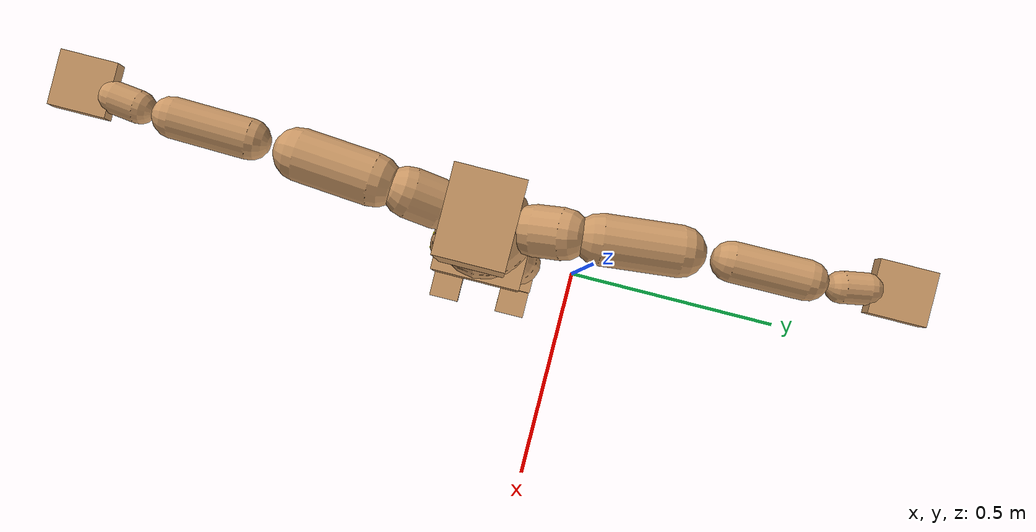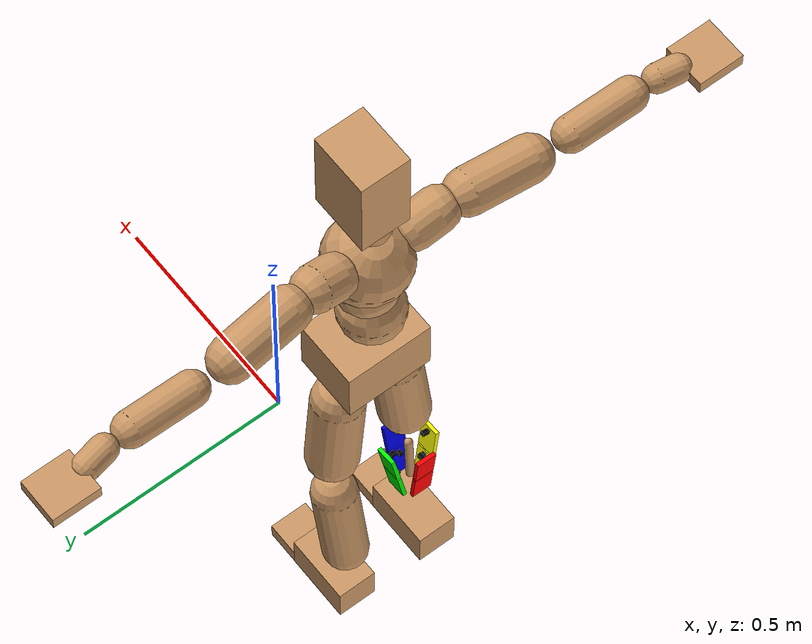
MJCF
<mujoco model="smpl_humanoid8">
  <compiler coordinate="local"/>
  <default>
    <joint damping="50.0" armature="0.01" stiffness="1000.0" limited="true"/>
    <geom conaffinity="1" condim="3" contype="7" margin="0.001" rgba="0.8 0.6 .4 1"/>

    <default class="posterior">
      <geom solref="0.0032 1" solimp="0.9 0.99 0.001 0.5 2" rgba="0 0 0 1"/>
    </default>

    <default class="medial">
      <geom solref="0.0023 1" solimp="0.9 0.99 0.001 0.5 2" rgba="0 0 0 1"/>
    </default>

    <default class="lateral">
      <geom solref="0.0020 1" solimp="0.9 0.99 0.001 0.5 2" rgba="0 0 0 1"/>
    </default>

    <default class="anterior">
      <geom solref="0.0017 1" solimp="0.9 0.99 0.001 0.5 2" rgba="0 0 0 1"/>
    </default>
  </default>
  <worldbody>
    <light cutoff="100" diffuse="1 1 1" dir="-0 0 -1.3" directional="true" exponent="1" pos="0 0 1.3" specular=".1 .1 .1"/>
    <body name="Pelvis" pos="-0.0018 -0.2233 0.0282">
      <freejoint name="Pelvis"/>
      <geom type="box" pos="-0.0055 -0.0000 -0.0121" size="0.083 0.1069 0.0722" quat="1.0000 0.0000 0.0000 0.0000" density="1000"/>
      <body name="L_Hip" pos="-0.0068 0.0695 -0.0914">
        <joint name="L_Hip_x" type="hinge" pos="0 0 0" axis="1 0 0" stiffness="800" damping="80" armature="0.02" range="-180.0000 180.0000"/>
        <joint name="L_Hip_y" type="hinge" pos="0 0 0" axis="0 1 0" stiffness="800" damping="80" armature="0.02" range="-180.0000 180.0000"/>
        <joint name="L_Hip_z" type="hinge" pos="0 0 0" axis="0 0 1" stiffness="800" damping="80" armature="0.02" range="-180.0000 180.0000"/>
        <geom type="capsule" contype="1" conaffinity="1" density="2040.816327" fromto="-0.0009 0.0069 -0.0750 -0.0036 0.0274 -0.3002" size="0.0615"/>
        <body name="L_Knee" pos="-0.0045 0.0343 -0.3752">
          <joint name="L_Knee_x" type="hinge" pos="0 0 0" axis="1 0 0" stiffness="800" damping="80" armature="0.02" range="-180.0000 180.0000"/>
          <joint name="L_Knee_y" type="hinge" pos="0 0 0" axis="0 1 0" stiffness="800" damping="80" armature="0.02" range="-180.0000 180.0000"/>
          <joint name="L_Knee_z" type="hinge" pos="0 0 0" axis="0 0 1" stiffness="800" damping="80" armature="0.02" range="-180.0000 180.0000"/>
          <geom type="capsule" contype="1" conaffinity="1" density="1234.567901" fromto="-0.0087 -0.0027 -0.0796 -0.0350 -0.0109 -0.3184" size="0.0541"/>
          <body name="L_Ankle" pos="-0.0437 -0.0136 -0.398">
            <joint name="L_Ankle_x" type="hinge" pos="0 0 0" axis="1 0 0" stiffness="800" damping="80" armature="0.02" range="-180.0000 180.0000"/>
            <joint name="L_Ankle_y" type="hinge" pos="0 0 0" axis="0 1 0" stiffness="800" damping="80" armature="0.02" range="-180.0000 180.0000"/>
            <joint name="L_Ankle_z" type="hinge" pos="0 0 0" axis="0 0 1" stiffness="800" damping="80" armature="0.02" range="-180.0000 180.0000"/>
            <geom type="box" pos="0.0242 0.0233 -0.0239" size="0.085 0.0483 0.0464" quat="1.0000 0.0000 0.0000 0.0000" density="1000"/>
            <body name="L_Toe" pos="0.1193 0.0264 -0.0558">
              <joint name="L_Toe_x" type="hinge" pos="0 0 0" axis="1 0 0" stiffness="500" damping="50" armature="0.02" range="-180.0000 180.0000"/>
              <joint name="L_Toe_y" type="hinge" pos="0 0 0" axis="0 1 0" stiffness="500" damping="50" armature="0.02" range="-180.0000 180.0000"/>
              <joint name="L_Toe_z" type="hinge" pos="0 0 0" axis="0 0 1" stiffness="500" damping="50" armature="0.02" range="-180.0000 180.0000"/>
              <geom type="box" pos="0.0248 -0.0030 0.0055" size="0.0496 0.0478 0.02" quat="1.0000 0.0000 0.0000 0.0000" density="1000"/>
            </body>
          </body>
        </body>
      </body>
      <body name="R_Hip" pos="-0.0043 -0.0677 -0.0905">
        <joint name="R_Hip_x" type="hinge" pos="0 0 0" axis="1 0 0" stiffness="800" damping="80" armature="0.02" range="-180.0000 180.0000"/>
        <joint name="R_Hip_y" type="hinge" pos="0 0 0" axis="0 1 0" stiffness="800" damping="80" armature="0.02" range="-180.0000 180.0000"/>
        <joint name="R_Hip_z" type="hinge" pos="0 0 0" axis="0 0 1" stiffness="800" damping="80" armature="0.02" range="-180.0000 180.0000"/>
        <geom type="capsule" contype="1" conaffinity="1" density="2040.816327" fromto="-0.0018 -0.0077 -0.0765 -0.0071 -0.0306 -0.3061" size="0.0606"/>
        <body name="R_Knee" pos="-0.0089 -0.0383 -0.3826">
          <joint name="R_Knee_x" type="hinge" pos="0 0 0" axis="1 0 0" stiffness="800" damping="80" armature="0.02" range="-180.0000 180.0000"/>
          <joint name="R_Knee_y" type="hinge" pos="0 0 0" axis="0 1 0" stiffness="800" damping="80" armature="0.02" range="-180.0000 180.0000"/>
          <joint name="R_Knee_z" type="hinge" pos="0 0 0" axis="0 0 1" stiffness="800" damping="80" armature="0.02" range="-180.0000 180.0000"/>
          <geom type="capsule" contype="1" conaffinity="1" density="14088" fromto="-0.0085 0.0032 -0.0797 -0.02115 0.0079 -0.1992" size="0.01"/>

          <body name="skin_box_posterior_top" pos="-0.05470451931018451 0.0032138937524858443 -0.0800532560472466" quat="0.5259542185366413 -0.47262264017238004 0.4929276001932958 -0.5069737478091723">
            <geom class="posterior" type="box" size="0.005 0.005 0.008767" density="140057"/>
          </body>

          <body name="skin_box_medial_top" pos="-0.00904822281488171 0.04927921900013707 -0.08307455413931036" quat="0.03309040381457722 0.0409744846434732 -0.6574625257782494 0.7516442935197971">
            <geom class="medial" type="box" size="0.005 0.005 0.008767" density="140057"/>
          </body>

          <body name="skin_box_anterior_top" pos="0.0366080736804211 0.0035934813036317837 -0.08970447144340371" quat="0.5727511163956187 -0.41467596827833214 -0.4368648205143749 0.5560118061668682">
            <geom class="anterior" type="box" size="0.005 0.005 0.008767" density="140057"/>
          </body>

          <body name="skin_box_lateral_top" pos="-0.0090482228148817 -0.04247184394401944 -0.08668317335133995" quat="0.7769019928564379 -0.6274148629728858 0.03964237168313232 0.03467514360094845">
            <geom class="lateral" type="box" size="0.005 0.005 0.008767" density="140057"/>
          </body>

          <body name="skin_box_posterior_bottom" pos="-0.05279881966829475 0.006360051605183232 -0.16004599294029714" quat="0.5259542185366413 -0.47262264017238004 0.4929276001932958 -0.5069737478091723">
            <geom class="posterior" type="box" size="0.005 0.005 0.005277" density="140057"/>
          </body>

          <body name="skin_box_medial_bottom" pos="-0.017401292414470984 0.04207470064768166 -0.1623884186244907" quat="0.03309040381457722 0.0409744846434732 -0.6574625257782494 0.7516442935197971">
            <geom class="medial" type="box" size="0.005 0.005 0.005277" density="140057"/>
          </body>

          <body name="skin_box_anterior_bottom" pos="0.017996234839352795 0.0066543475012220835 -0.16752862263745497" quat="0.5727511163956187 -0.41467596827833214 -0.4368648205143749 0.5560118061668682">
            <geom class="anterior" type="box" size="0.005 0.005 0.005277" density="140057"/>
          </body>

          <body name="skin_box_lateral_bottom" pos="-0.017401292414470974 -0.029060301541276347 -0.16518619695326142" quat="0.7769019928564379 -0.6274148629728858 0.03964237168313232 0.03467514360094845">
            <geom class="lateral" type="box" size="0.005 0.005 0.005277" density="140057"/>
          </body>

          <body name="prosthetic_assembly1" pos="-0.014825  0.00555  -0.13945" quat="0.53483409 -0.46255    -0.48321172  0.51624261">
          <inertial pos="0 0 0" mass="0.1" diaginertia="0.001 0.001 0.001"/>
            <joint name="suspension_slide" type="slide" axis="0 1 0"
               range="-0.05 0.05" stiffness="10000000" damping="1" springref="-0.025"/>

            <body name="prosthetic_assembly2" pos="0.0  0.0  0.0" quat="1.0 0.0 0.0 0.0">
            <inertial pos="0 0 0" mass="0.1" diaginertia="0.001 0.001 0.001"/>

            <joint name="suspension_x" type="hinge" axis="1 0 0" pos="0 0 0"
                  range="-10 10" stiffness="10" damping="1"/>

            <joint name="suspension_y" type="hinge" axis="0 1 0" pos="0 0 0"
                  range="-10 10" stiffness="10" damping="1"/>

            <joint name="suspension_z" type="hinge" axis="0 0 1" pos="0 0 0"
                  range="-20 20" stiffness="10" damping="1"/>

            <body name="socket_box_posterior_top" pos="-0.0 -0.02792 0.05518" quat="0.0 0.0 0.99627 -0.08629">

                <geom type="box" pos="0.0 0.0 0.0" size="0.025000 0.037500 0.005000"
                      density="5912" rgba="1 0 0 1"/>
            </body>
            <body name="socket_box_medial_top" pos="0.05518 -0.02792 0.0" quat="0.70447 0.06101 -0.70447 0.06101">

                <geom type="box" pos="0.0 0.0 0.0" size="0.025000 0.037500 0.005000"
                      density="5912" rgba="0 1 0 1"/>
            </body>
            <body name="socket_box_anterior_top" pos="0.0 -0.02792 -0.05518" quat="0.99627 0.08629 -0.0 -0.0">

                <geom type="box" pos="0.0 0.0 0.0" size="0.025000 0.037500 0.005000"
                      density="5912" rgba="0 0 1 1"/>
            </body>
            <body name="socket_box_lateral_top" pos="-0.05518 -0.02792 -0.0" quat="0.70447 0.06101 0.70447 -0.06101">

                <geom type="box" pos="0.0 0.0 0.0" size="0.025000 0.037500 0.005000"
                      density="5912" rgba="1 1 0 1"/>
            </body>
            <body name="socket_box_posterior_bottom" pos="-0.0 0.05089 0.04142" quat="0.0 0.0 0.99627 -0.08629">

                <geom type="box" pos="0.0 0.0 0.0" size="0.025000 0.037500 0.005000"
                      density="5912" rgba="1 0 0 1"/>
            </body>
            <body name="socket_box_medial_bottom" pos="0.04142 0.05089 0.0" quat="0.70447 0.06101 -0.70447 0.06101">

                <geom type="box" pos="0.0 0.0 0.0" size="0.025000 0.037500 0.005000"
                      density="5912" rgba="0 1 0 1"/>
            </body>
            <body name="socket_box_anterior_bottom" pos="-0.0 0.05089 -0.04142" quat="0.99627 0.08629 -0.0 -0.0">

                <geom type="box" pos="0.0 0.0 0.0" size="0.025000 0.037500 0.005000"
                      density="5912" rgba="0 0 1 1"/>
            </body>
            <body name="socket_box_lateral_bottom" pos="-0.04142 0.05089 -0.0" quat="0.70447 0.06101 0.70447 -0.06101">

                <geom type="box" pos="0.0 0.0 0.0" size="0.025000 0.037500 0.005000"
                      density="5912" rgba="1 1 0 1"/>
            </body>

            <body name="R_Ankle" pos="6.53051581e-05 2.60605127e-01 6.25176230e-05" quat="0.53483409  0.46255     0.48321172 -0.51624261">
              <joint name="R_Ankle_x" type="hinge" pos="0 0 0" axis="1 0 0" stiffness="800" damping="80" armature="0.02" range="-180.0000 180.0000"/>
              <joint name="R_Ankle_y" type="hinge" pos="0 0 0" axis="0 1 0" stiffness="800" damping="80" armature="0.02" range="-180.0000 180.0000"/>
              <joint name="R_Ankle_z" type="hinge" pos="0 0 0" axis="0 0 1" stiffness="800" damping="80" armature="0.02" range="-180.0000 180.0000"/>
              <geom type="box" pos="0.0256 -0.0212 -0.0174" size="0.0865 0.0483 0.0478" quat="1.0000 0.0000 0.0000 0.0000" density="1000"/>
              <body name="R_Toe" pos="0.1233 -0.0254 -0.0481">
                <joint name="R_Toe_x" type="hinge" pos="0 0 0" axis="1 0 0" stiffness="500" damping="50" armature="0.02" range="-180.0000 180.0000"/>
                <joint name="R_Toe_y" type="hinge" pos="0 0 0" axis="0 1 0" stiffness="500" damping="50" armature="0.02" range="-180.0000 180.0000"/>
                <joint name="R_Toe_z" type="hinge" pos="0 0 0" axis="0 0 1" stiffness="500" damping="50" armature="0.02" range="-180.0000 180.0000"/>
                <geom type="box" pos="0.0227 0.0042 0.0045" size="0.0493 0.0479 0.0216" quat="1.0000 0.0000 0.0000 0.0000" density="1000"/>
		      </body>
              </body>
            </body>

          </body>

        </body>
      </body>
      <body name="Torso" pos="-0.0267 -0.0025 0.109">
        <joint name="Torso_x" type="hinge" pos="0 0 0" axis="1 0 0" stiffness="1000" damping="100" armature="0.02" range="-180.0000 180.0000"/>
        <joint name="Torso_y" type="hinge" pos="0 0 0" axis="0 1 0" stiffness="1000" damping="100" armature="0.02" range="-180.0000 180.0000"/>
        <joint name="Torso_z" type="hinge" pos="0 0 0" axis="0 0 1" stiffness="1000" damping="100" armature="0.02" range="-180.0000 180.0000"/>
        <geom type="capsule" contype="1" conaffinity="1" density="2040.816327" fromto="0.0005 0.0025 0.0608 0.0006 0.0030 0.0743" size="0.0769"/>
        <body name="Spine" pos="0.0011 0.0055 0.1352">
          <joint name="Spine_x" type="hinge" pos="0 0 0" axis="1 0 0" stiffness="1000" damping="100" armature="0.02" range="-180.0000 180.0000"/>
          <joint name="Spine_y" type="hinge" pos="0 0 0" axis="0 1 0" stiffness="1000" damping="100" armature="0.02" range="-180.0000 180.0000"/>
          <joint name="Spine_z" type="hinge" pos="0 0 0" axis="0 0 1" stiffness="1000" damping="100" armature="0.02" range="-180.0000 180.0000"/>
          <geom type="capsule" contype="1" conaffinity="1" density="2040.816327" fromto="0.0114 0.0007 0.0238 0.0140 0.0008 0.0291" size="0.0755"/>
          <body name="Chest" pos="0.0254 0.0015 0.0529">
            <joint name="Chest_x" type="hinge" pos="0 0 0" axis="1 0 0" stiffness="1000" damping="100" armature="0.02" range="-180.0000 180.0000"/>
            <joint name="Chest_y" type="hinge" pos="0 0 0" axis="0 1 0" stiffness="1000" damping="100" armature="0.02" range="-180.0000 180.0000"/>
            <joint name="Chest_z" type="hinge" pos="0 0 0" axis="0 0 1" stiffness="1000" damping="100" armature="0.02" range="-180.0000 180.0000"/>
            <geom type="capsule" contype="1" conaffinity="1" density="2040.816327" fromto="-0.0173 -0.0009 0.0682 -0.0212 -0.0010 0.0833" size="0.1002"/>
            <body name="Neck" pos="-0.0429 -0.0028 0.2139">
              <joint name="Neck_x" type="hinge" pos="0 0 0" axis="1 0 0" stiffness="500" damping="50" armature="0.02" range="-180.0000 180.0000"/>
              <joint name="Neck_y" type="hinge" pos="0 0 0" axis="0 1 0" stiffness="500" damping="50" armature="0.02" range="-180.0000 180.0000"/>
              <joint name="Neck_z" type="hinge" pos="0 0 0" axis="0 0 1" stiffness="500" damping="50" armature="0.02" range="-180.0000 180.0000"/>
              <geom type="capsule" contype="1" conaffinity="1" density="1000" fromto="0.0103 0.0010 0.0130 0.0411 0.0041 0.0520" size="0.0436"/>
              <body name="Head" pos="0.0513 0.0052 0.065">
                <joint name="Head_x" type="hinge" pos="0 0 0" axis="1 0 0" stiffness="500" damping="50" armature="0.02" range="-180.0000 180.0000"/>
                <joint name="Head_y" type="hinge" pos="0 0 0" axis="0 1 0" stiffness="500" damping="50" armature="0.02" range="-180.0000 180.0000"/>
                <joint name="Head_z" type="hinge" pos="0 0 0" axis="0 0 1" stiffness="500" damping="50" armature="0.02" range="-180.0000 180.0000"/>
                <geom type="box" pos="-0.0116 -0.0042 0.0876" size="0.076 0.0606 0.1154" quat="1.0000 0.0000 0.0000 0.0000" density="1000"/>
              </body>
            </body>
            <body name="L_Thorax" pos="-0.0341 0.0788 0.1217">
              <joint name="L_Thorax_x" type="hinge" pos="0 0 0" axis="1 0 0" stiffness="500" damping="50" armature="0.02" range="-180.0000 180.0000"/>
              <joint name="L_Thorax_y" type="hinge" pos="0 0 0" axis="0 1 0" stiffness="500" damping="50" armature="0.02" range="-180.0000 180.0000"/>
              <joint name="L_Thorax_z" type="hinge" pos="0 0 0" axis="0 0 1" stiffness="500" damping="50" armature="0.02" range="-180.0000 180.0000"/>
              <geom type="capsule" contype="1" conaffinity="1" density="1000" fromto="-0.0018 0.0182 0.0061 -0.0071 0.0728 0.0244" size="0.0521"/>
              <body name="L_Shoulder" pos="-0.0089 0.091 0.0305">
                <joint name="L_Shoulder_x" type="hinge" pos="0 0 0" axis="1 0 0" stiffness="500" damping="50" armature="0.02" range="-180.0000 180.0000"/>
                <joint name="L_Shoulder_y" type="hinge" pos="0 0 0" axis="0 1 0" stiffness="500" damping="50" armature="0.02" range="-180.0000 180.0000"/>
                <joint name="L_Shoulder_z" type="hinge" pos="0 0 0" axis="0 0 1" stiffness="500" damping="50" armature="0.02" range="-180.0000 180.0000"/>
                <geom type="capsule" contype="1" conaffinity="1" density="1000" fromto="-0.0055 0.0519 -0.0026 -0.0220 0.2077 -0.0102" size="0.0517"/>
                <body name="L_Elbow" pos="-0.0275 0.2596 -0.0128">
                  <joint name="L_Elbow_x" type="hinge" pos="0 0 0" axis="1 0 0" stiffness="500" damping="50" armature="0.02" range="-180.0000 180.0000"/>
                  <joint name="L_Elbow_y" type="hinge" pos="0 0 0" axis="0 1 0" stiffness="500" damping="50" armature="0.02" range="-180.0000 180.0000"/>
                  <joint name="L_Elbow_z" type="hinge" pos="0 0 0" axis="0 0 1" stiffness="500" damping="50" armature="0.02" range="-180.0000 180.0000"/>
                  <geom type="capsule" contype="1" conaffinity="1" density="1000" fromto="-0.0002 0.0498 0.0018 -0.0009 0.1994 0.0072" size="0.0405"/>
                  <body name="L_Wrist" pos="-0.0012 0.2492 0.009">
                    <joint name="L_Wrist_x" type="hinge" pos="0 0 0" axis="1 0 0" stiffness="300" damping="30" armature="0.02" range="-180.0000 180.0000"/>
                    <joint name="L_Wrist_y" type="hinge" pos="0 0 0" axis="0 1 0" stiffness="300" damping="30" armature="0.02" range="-180.0000 180.0000"/>
                    <joint name="L_Wrist_z" type="hinge" pos="0 0 0" axis="0 0 1" stiffness="300" damping="30" armature="0.02" range="-180.0000 180.0000"/>
                    <geom type="capsule" contype="1" conaffinity="1" density="1000" fromto="-0.0030 0.0168 -0.0016 -0.0120 0.0672 -0.0065" size="0.0318"/>
                    <body name="L_Hand" pos="-0.0149 0.084 -0.0082">
                      <joint name="L_Hand_x" type="hinge" pos="0 0 0" axis="1 0 0" stiffness="300" damping="30" armature="0.02" range="-180.0000 180.0000"/>
                      <joint name="L_Hand_y" type="hinge" pos="0 0 0" axis="0 1 0" stiffness="300" damping="30" armature="0.02" range="-180.0000 180.0000"/>
                      <joint name="L_Hand_z" type="hinge" pos="0 0 0" axis="0 0 1" stiffness="300" damping="30" armature="0.02" range="-180.0000 180.0000"/>
                      <geom type="box" pos="-0.0058 0.0493 0.0010" size="0.0538 0.0585 0.0158" quat="1.0000 0.0000 0.0000 0.0000" density="1000"/>
                    </body>
                  </body>
                </body>
              </body>
            </body>
            <body name="R_Thorax" pos="-0.0386 -0.0818 0.1188">
              <joint name="R_Thorax_x" type="hinge" pos="0 0 0" axis="1 0 0" stiffness="500" damping="50" armature="0.02" range="-180.0000 180.0000"/>
              <joint name="R_Thorax_y" type="hinge" pos="0 0 0" axis="0 1 0" stiffness="500" damping="50" armature="0.02" range="-180.0000 180.0000"/>
              <joint name="R_Thorax_z" type="hinge" pos="0 0 0" axis="0 0 1" stiffness="500" damping="50" armature="0.02" range="-180.0000 180.0000"/>
              <geom type="capsule" contype="1" conaffinity="1" density="1000" fromto="-0.0018 -0.0192 0.0065 -0.0073 -0.0768 0.0260" size="0.0511"/>
              <body name="R_Shoulder" pos="-0.0091 -0.096 0.0326">
                <joint name="R_Shoulder_x" type="hinge" pos="0 0 0" axis="1 0 0" stiffness="500" damping="50" armature="0.02" range="-180.0000 180.0000"/>
                <joint name="R_Shoulder_y" type="hinge" pos="0 0 0" axis="0 1 0" stiffness="500" damping="50" armature="0.02" range="-180.0000 180.0000"/>
                <joint name="R_Shoulder_z" type="hinge" pos="0 0 0" axis="0 0 1" stiffness="500" damping="50" armature="0.02" range="-180.0000 180.0000"/>
                <geom type="capsule" contype="1" conaffinity="1" density="1000" fromto="-0.0043 -0.0507 -0.0027 -0.0171 -0.2030 -0.0107" size="0.0531"/>
                <body name="R_Elbow" pos="-0.0214 -0.2537 -0.0133">
                  <joint name="R_Elbow_x" type="hinge" pos="0 0 0" axis="1 0 0" stiffness="500" damping="50" armature="0.02" range="-180.0000 180.0000"/>
                  <joint name="R_Elbow_y" type="hinge" pos="0 0 0" axis="0 1 0" stiffness="500" damping="50" armature="0.02" range="-180.0000 180.0000"/>
                  <joint name="R_Elbow_z" type="hinge" pos="0 0 0" axis="0 0 1" stiffness="500" damping="50" armature="0.02" range="-180.0000 180.0000"/>
                  <geom type="capsule" contype="1" conaffinity="1" density="1000" fromto="-0.0011 -0.0511 0.0016 -0.0044 -0.2042 0.0062" size="0.0408"/>
                  <body name="R_Wrist" pos="-0.0056 -0.2553 0.0078">
                    <joint name="R_Wrist_x" type="hinge" pos="0 0 0" axis="1 0 0" stiffness="300" damping="30" armature="0.02" range="-180.0000 180.0000"/>
                    <joint name="R_Wrist_y" type="hinge" pos="0 0 0" axis="0 1 0" stiffness="300" damping="30" armature="0.02" range="-180.0000 180.0000"/>
                    <joint name="R_Wrist_z" type="hinge" pos="0 0 0" axis="0 0 1" stiffness="300" damping="30" armature="0.02" range="-180.0000 180.0000"/>
                    <geom type="capsule" contype="1" conaffinity="1" density="1000" fromto="-0.0021 -0.0169 -0.0012 -0.0083 -0.0677 -0.0049" size="0.0326"/>
                    <body name="R_Hand" pos="-0.0103 -0.0846 -0.0061">
                      <joint name="R_Hand_x" type="hinge" pos="0 0 0" axis="1 0 0" stiffness="300" damping="30" armature="0.02" range="-180.0000 180.0000"/>
                      <joint name="R_Hand_y" type="hinge" pos="0 0 0" axis="0 1 0" stiffness="300" damping="30" armature="0.02" range="-180.0000 180.0000"/>
                      <joint name="R_Hand_z" type="hinge" pos="0 0 0" axis="0 0 1" stiffness="300" damping="30" armature="0.02" range="-180.0000 180.0000"/>
                      <geom type="box" pos="-0.0079 -0.0462 -0.0009" size="0.0546 0.0569 0.0164" quat="1.0000 0.0000 0.0000 0.0000" density="1000"/>
                    </body>
                  </body>
                </body>
              </body>
            </body>
          </body>
        </body>
      </body>
    </body>
  </worldbody>
  <actuator>
    <motor name="L_Hip_x" joint="L_Hip_x" gear="500" forcerange="-1000 1000"/>
    <motor name="L_Hip_y" joint="L_Hip_y" gear="500" forcerange="-1000 1000"/>
    <motor name="L_Hip_z" joint="L_Hip_z" gear="500" forcerange="-1000 1000"/>
    <motor name="L_Knee_x" joint="L_Knee_x" gear="500" forcerange="-1000 1000"/>
    <motor name="L_Knee_y" joint="L_Knee_y" gear="500" forcerange="-1000 1000"/>
    <motor name="L_Knee_z" joint="L_Knee_z" gear="500" forcerange="-1000 1000"/>
    <motor name="L_Ankle_x" joint="L_Ankle_x" gear="500" forcerange="-1000 1000"/>
    <motor name="L_Ankle_y" joint="L_Ankle_y" gear="500" forcerange="-1000 1000"/>
    <motor name="L_Ankle_z" joint="L_Ankle_z" gear="500" forcerange="-1000 1000"/>
    <motor name="L_Toe_x" joint="L_Toe_x" gear="500" forcerange="-1000 1000"/>
    <motor name="L_Toe_y" joint="L_Toe_y" gear="500" forcerange="-1000 1000"/>
    <motor name="L_Toe_z" joint="L_Toe_z" gear="500" forcerange="-1000 1000"/>
    <motor name="R_Hip_x" joint="R_Hip_x" gear="500" forcerange="-1000 1000"/>
    <motor name="R_Hip_y" joint="R_Hip_y" gear="500" forcerange="-1000 1000"/>
    <motor name="R_Hip_z" joint="R_Hip_z" gear="500" forcerange="-1000 1000"/>
    <motor name="R_Knee_x" joint="R_Knee_x" gear="500" forcerange="-1000 1000"/>
    <motor name="R_Knee_y" joint="R_Knee_y" gear="500" forcerange="-1000 1000"/>
    <motor name="R_Knee_z" joint="R_Knee_z" gear="500" forcerange="-1000 1000"/>
    <motor name="R_Ankle_x" joint="R_Ankle_x" gear="500" forcerange="-1000 1000"/>
    <motor name="R_Ankle_y" joint="R_Ankle_y" gear="500" forcerange="-1000 1000"/>
    <motor name="R_Ankle_z" joint="R_Ankle_z" gear="500" forcerange="-1000 1000"/>
    <motor name="R_Toe_x" joint="R_Toe_x" gear="500" forcerange="-1000 1000"/>
    <motor name="R_Toe_y" joint="R_Toe_y" gear="500" forcerange="-1000 1000"/>
    <motor name="R_Toe_z" joint="R_Toe_z" gear="500" forcerange="-1000 1000"/>
    <motor name="Torso_x" joint="Torso_x" gear="500" forcerange="-1000 1000"/>
    <motor name="Torso_y" joint="Torso_y" gear="500" forcerange="-1000 1000"/>
    <motor name="Torso_z" joint="Torso_z" gear="500" forcerange="-1000 1000"/>
    <motor name="Spine_x" joint="Spine_x" gear="500" forcerange="-1000 1000"/>
    <motor name="Spine_y" joint="Spine_y" gear="500" forcerange="-1000 1000"/>
    <motor name="Spine_z" joint="Spine_z" gear="500" forcerange="-1000 1000"/>
    <motor name="Chest_x" joint="Chest_x" gear="500" forcerange="-1000 1000"/>
    <motor name="Chest_y" joint="Chest_y" gear="500" forcerange="-1000 1000"/>
    <motor name="Chest_z" joint="Chest_z" gear="500" forcerange="-1000 1000"/>
    <motor name="Neck_x" joint="Neck_x" gear="500" forcerange="-1000 1000"/>
    <motor name="Neck_y" joint="Neck_y" gear="500" forcerange="-1000 1000"/>
    <motor name="Neck_z" joint="Neck_z" gear="500" forcerange="-1000 1000"/>
    <motor name="Head_x" joint="Head_x" gear="500" forcerange="-1000 1000"/>
    <motor name="Head_y" joint="Head_y" gear="500" forcerange="-1000 1000"/>
    <motor name="Head_z" joint="Head_z" gear="500" forcerange="-1000 1000"/>
    <motor name="L_Thorax_x" joint="L_Thorax_x" gear="500" forcerange="-1000 1000"/>
    <motor name="L_Thorax_y" joint="L_Thorax_y" gear="500" forcerange="-1000 1000"/>
    <motor name="L_Thorax_z" joint="L_Thorax_z" gear="500" forcerange="-1000 1000"/>
    <motor name="L_Shoulder_x" joint="L_Shoulder_x" gear="500" forcerange="-1000 1000"/>
    <motor name="L_Shoulder_y" joint="L_Shoulder_y" gear="500" forcerange="-1000 1000"/>
    <motor name="L_Shoulder_z" joint="L_Shoulder_z" gear="500" forcerange="-1000 1000"/>
    <motor name="L_Elbow_x" joint="L_Elbow_x" gear="500" forcerange="-1000 1000"/>
    <motor name="L_Elbow_y" joint="L_Elbow_y" gear="500" forcerange="-1000 1000"/>
    <motor name="L_Elbow_z" joint="L_Elbow_z" gear="500" forcerange="-1000 1000"/>
    <motor name="L_Wrist_x" joint="L_Wrist_x" gear="500" forcerange="-1000 1000"/>
    <motor name="L_Wrist_y" joint="L_Wrist_y" gear="500" forcerange="-1000 1000"/>
    <motor name="L_Wrist_z" joint="L_Wrist_z" gear="500" forcerange="-1000 1000"/>
    <motor name="L_Hand_x" joint="L_Hand_x" gear="500" forcerange="-1000 1000"/>
    <motor name="L_Hand_y" joint="L_Hand_y" gear="500" forcerange="-1000 1000"/>
    <motor name="L_Hand_z" joint="L_Hand_z" gear="500" forcerange="-1000 1000"/>
    <motor name="R_Thorax_x" joint="R_Thorax_x" gear="500" forcerange="-1000 1000"/>
    <motor name="R_Thorax_y" joint="R_Thorax_y" gear="500" forcerange="-1000 1000"/>
    <motor name="R_Thorax_z" joint="R_Thorax_z" gear="500" forcerange="-1000 1000"/>
    <motor name="R_Shoulder_x" joint="R_Shoulder_x" gear="500" forcerange="-1000 1000"/>
    <motor name="R_Shoulder_y" joint="R_Shoulder_y" gear="500" forcerange="-1000 1000"/>
    <motor name="R_Shoulder_z" joint="R_Shoulder_z" gear="500" forcerange="-1000 1000"/>
    <motor name="R_Elbow_x" joint="R_Elbow_x" gear="500" forcerange="-1000 1000"/>
    <motor name="R_Elbow_y" joint="R_Elbow_y" gear="500" forcerange="-1000 1000"/>
    <motor name="R_Elbow_z" joint="R_Elbow_z" gear="500" forcerange="-1000 1000"/>
    <motor name="R_Wrist_x" joint="R_Wrist_x" gear="500" forcerange="-1000 1000"/>
    <motor name="R_Wrist_y" joint="R_Wrist_y" gear="500" forcerange="-1000 1000"/>
    <motor name="R_Wrist_z" joint="R_Wrist_z" gear="500" forcerange="-1000 1000"/>
    <motor name="R_Hand_x" joint="R_Hand_x" gear="500" forcerange="-1000 1000"/>
    <motor name="R_Hand_y" joint="R_Hand_y" gear="500" forcerange="-1000 1000"/>
    <motor name="R_Hand_z" joint="R_Hand_z" gear="500" forcerange="-1000 1000"/>
  </actuator>
  <contact>
    <exclude body1="Torso" body2="Chest"/>
    <exclude body1="Head" body2="Chest"/>
    <exclude body1="R_Knee" body2="R_Toe"/>
    <exclude body1="R_Knee" body2="L_Ankle"/>
    <exclude body1="R_Knee" body2="L_Toe"/>
    <exclude body1="L_Knee" body2="L_Toe"/>
    <exclude body1="L_Knee" body2="R_Ankle"/>
    <exclude body1="L_Knee" body2="R_Toe"/>
    <exclude body1="L_Shoulder" body2="Chest"/>
    <exclude body1="R_Shoulder" body2="Chest"/>
  </contact>
  <sensor/>
  <size njmax="700" nconmax="700"/>
</mujoco>
